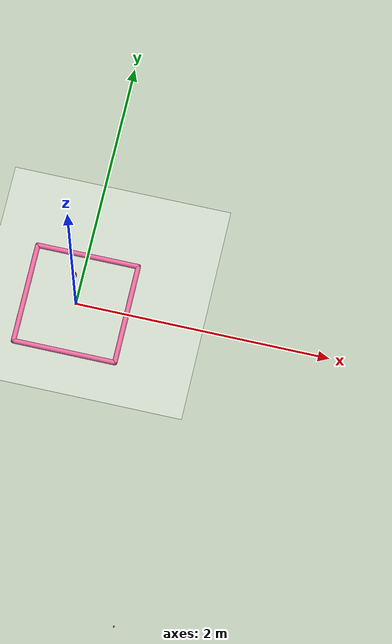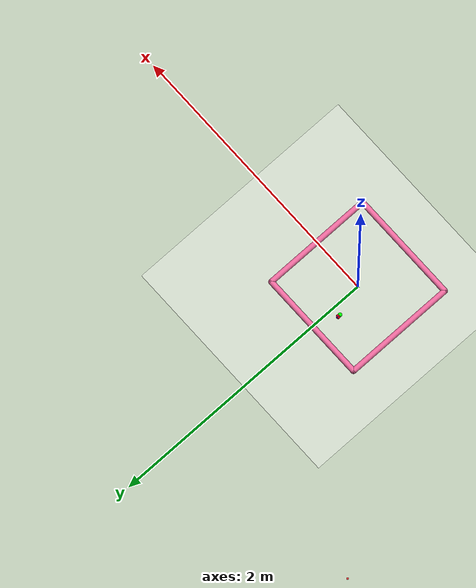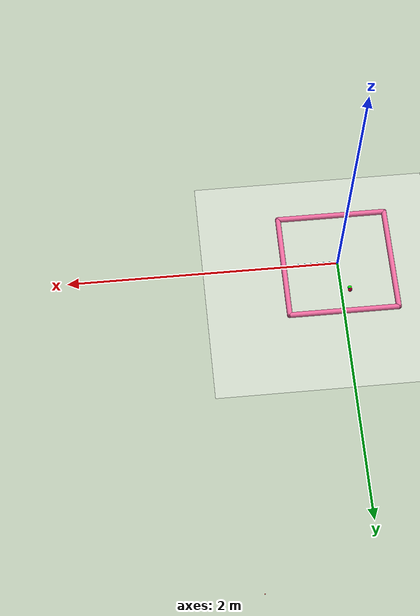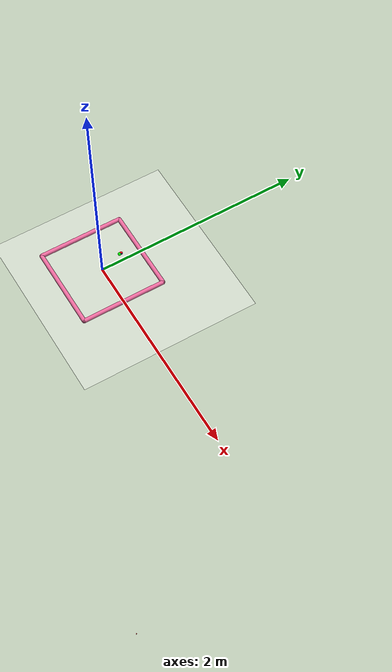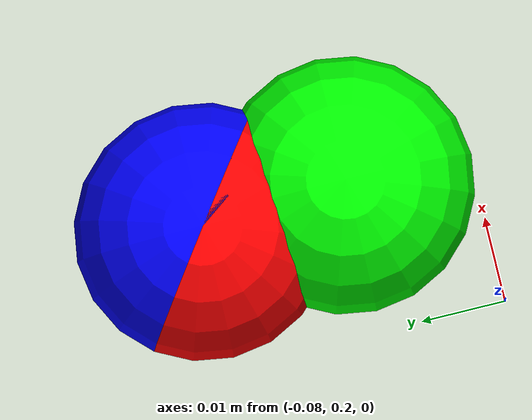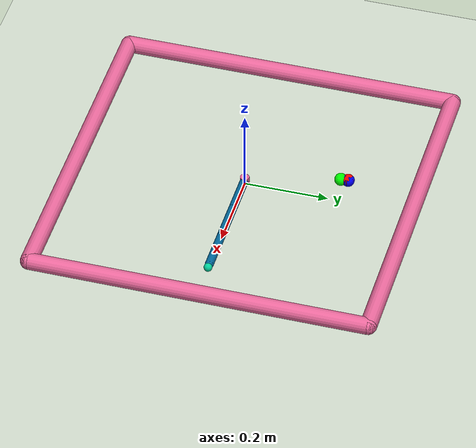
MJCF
<mujoco model="reacher">
	<compiler angle="radian" inertiafromgeom="true"/>
	<default>
		<joint armature="1" damping="1" limited="true"/>
		<geom contype="0" friction="1 0.1 0.1" rgba="0.7 0.7 0 1"/>
	</default>
	<option gravity="0 0 -9.81" integrator="RK4" timestep="0.01"/>
	<worldbody>
		<!-- Arena -->
		<geom conaffinity="0" contype="0" name="ground" pos="0 0 0" rgba="0.99 0.99 0.99 1" size="1 1 10" type="plane"/>
		<geom conaffinity="0" fromto="-.4 -.4 .01 .4 -.4 .01" name="sideS" rgba="0.9 0.4 0.6 1" size=".02" type="capsule"/>
		<geom conaffinity="0" fromto=" .4 -.4 .01 .4  .4 .01" name="sideE" rgba="0.9 0.4 0.6 1" size=".02" type="capsule"/>
		<geom conaffinity="0" fromto="-.4  .4 .01 .4  .4 .01" name="sideN" rgba="0.9 0.4 0.6 1" size=".02" type="capsule"/>
		<geom conaffinity="0" fromto="-.4 -.4 .01 -.4 .4 .01" name="sideW" rgba="0.9 0.4 0.6 1" size=".02" type="capsule"/>
		<!-- Arm -->
		<geom conaffinity="0" contype="0" fromto="0 0 0 0 0 0.02" name="root" rgba="0.9 0.4 0.6 1" size=".011" type="cylinder"/>
		<body name="body0" pos="0 0 .01">
			<geom fromto="0 0 0 0.1 0 0" name="link0" rgba="0.0 0.4 0.6 1" size=".01" type="capsule"/>
			<joint axis="0 0 1" limited="true" name="joint0" pos="0 0 0" range="-3.14 3.14" type="hinge"/>
			<body name="body1" pos="0.1 0 0">
				<joint axis="0 0 1" limited="true" name="joint1" pos="0 0 0" range="-1.8 1.8" type="hinge"/>
				<geom fromto="0 0 0 0.1 0 0" name="link1" rgba="0.0 0.4 0.6 1" size=".01" type="capsule"/>
			    <body name="body2" pos="0.1 0 0">
				    <joint axis="0 0 1" limited="true" name="joint2" pos="0 0 0" range="-1.8 1.8" type="hinge"/>
				    <geom fromto="0 0 0 0.1 0 0" name="link2" rgba="0.0 0.4 0.6 1" size=".01" type="capsule"/>
				    <body name="fingertip" pos="0.11 0 0">
					    <geom contype="0" name="fingertip" pos="0 0 0" rgba="0.0 0.8 0.6 1" size=".01" type="sphere"/>
				    </body>
    			</body>
			</body>
		</body>
		<!-- Target -->
		<body name="target" pos=".1 -.1 -10">
			<joint armature="0" axis="1 0 0" damping="0" limited="true" name="target_x" pos="0 0 0" range="-.27 .27" ref=".1" stiffness="0" type="slide"/>
			<joint armature="0" axis="0 1 0" damping="0" limited="true" name="target_y" pos="0 0 0" range="-.27 .27" ref="-.1" stiffness="0" type="slide"/>
			<geom conaffinity="0" contype="0" name="target" pos="0 0 0" rgba="0.9 0.2 0.2 1" size=".009" type="sphere"/>
		</body>
		<!-- My Target -->
		<geom type="sphere" pos="-0.06421092895506934 0.2322123925112077 0.01" size="0.015" rgba="1 0 0 1"/>
		<geom type="sphere" pos="-0.06293832714469498 0.21486911603087197 0.01" size="0.015" rgba="0 1 0 1"/>
		<geom type="sphere" pos="-0.06421087682247162 0.23221245408058167 0.01" size="0.015" rgba="0 0 1 1"/>
	</worldbody>
	<actuator>
		<motor ctrllimited="true" ctrlrange="-1.0 1.0" gear="200.0" joint="joint0"/>
		<motor ctrllimited="true" ctrlrange="-1.0 1.0" gear="200.0" joint="joint1"/>
		<motor ctrllimited="true" ctrlrange="-1.0 1.0" gear="200.0" joint="joint2"/>
	</actuator>
</mujoco>
